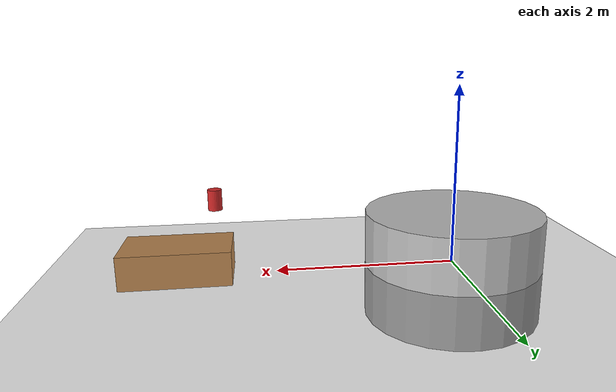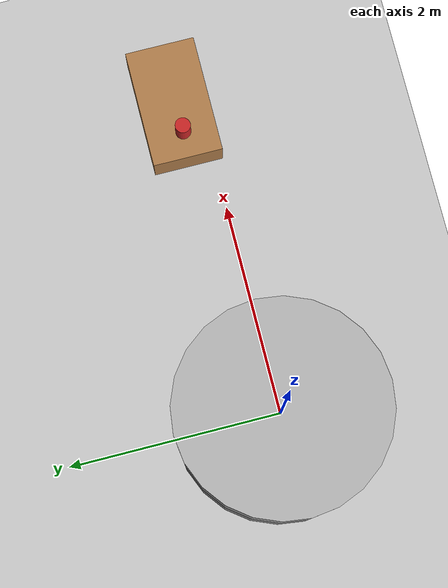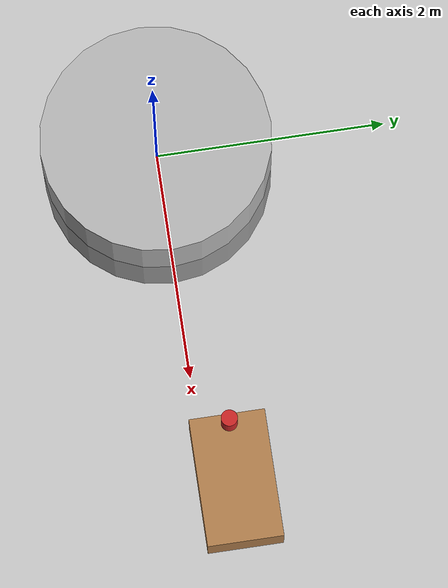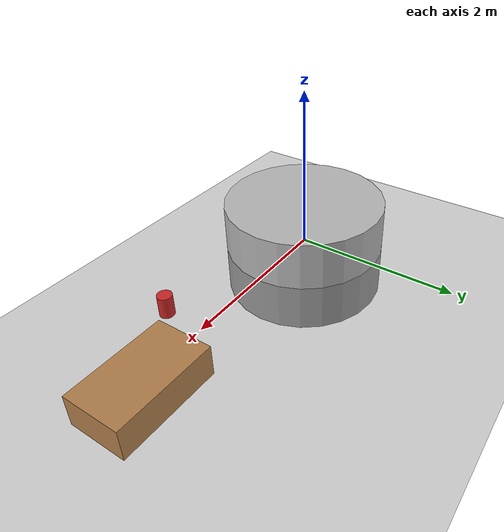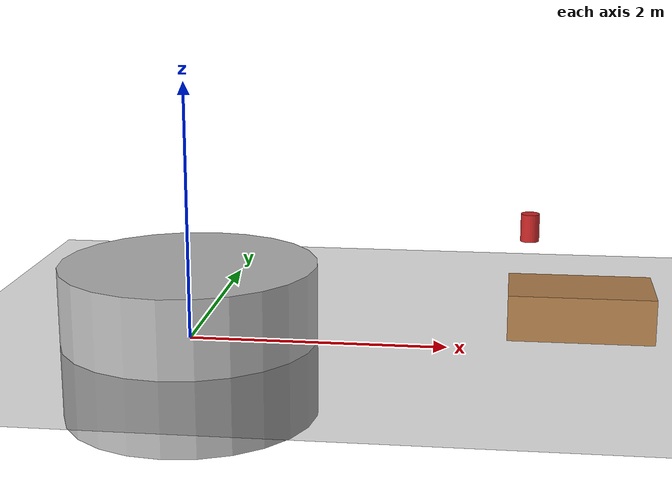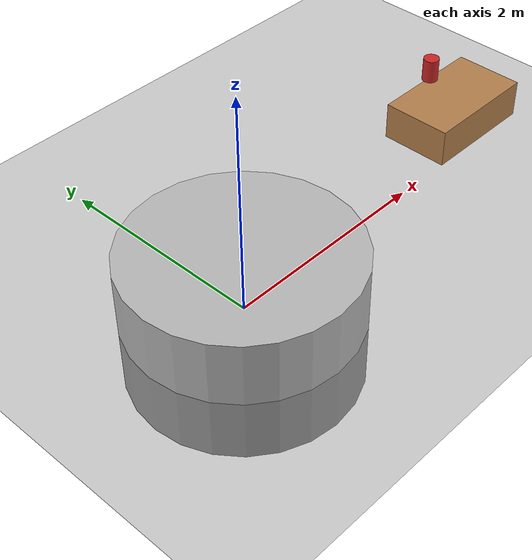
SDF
<?xml version="1.0" ?>
<sdf version="1.4">
  <world name="default">

    <scene>
      <ambient>0.5 0.5 0.5 1</ambient>
      <background>0.5 0.5 0.5 1</background>
      <shadows>false</shadows>
    </scene>
    <physics type="ode">
      <!-- update_rate="1000"-->
      <gravity>0 0 -9.8</gravity>
      <ode>
        <solver>
          <type>quick</type>
          <iters>10</iters>
          <sor>1.3</sor>
        </solver>
        <constraints>
          <cfm>0.0</cfm>
          <erp>0.2</erp>
          <contact_max_correcting_vel>100.0</contact_max_correcting_vel>
          <contact_surface_layer>0.001</contact_surface_layer>
        </constraints>
      </ode>
      <max_step_size>0.001</max_step_size>
    </physics>

<model name="surface">
    <link name="link">
      <visual name="visual">
        <geometry>
          <cylinder>
            <radius>1</radius>
            <length>1.2</length>
          </cylinder>
        </geometry>
      </visual>
    </link>
  </model>

    <!-- Ground Plane -->
    <model name="plane1_model">
      <link name="body">
        <collision name="geom_1">
          <geometry>
            <plane>
              <normal>0 0 1</normal>
            </plane>
          </geometry>
          <surface>
            <friction>
              <ode>
                <mu>10.0</mu>
                <mu2>10.0</mu2>
                <fdir1>0 0 0</fdir1>
                <slip1>0</slip1>
                <slip2>0</slip2>
              </ode>
            </friction>
            <bounce>
              <restitution_coefficient>0</restitution_coefficient>
              <threshold>1000000.0</threshold>
            </bounce>
            <contact>
              <ode>
                <soft_cfm>0</soft_cfm>
                <soft_erp>0.2</soft_erp>
                <kp>1e10</kp>
                <kd>1</kd>
                <max_vel>100.0</max_vel>
                <min_depth>0.0001</min_depth>
              </ode>
            </contact>
          </surface>
        </collision>
        <visual name="visual_1">
          <geometry>
            <plane>
              <normal>0 0 1</normal>
              <size>20 20</size>
            </plane>
          </geometry>
          <material>
            <script>
              <name>Gazebo/Road</name>
              <uri>file://media/materials/scripts/gazebo.material</uri>
            </script>
          </material>
          <cast_shadows>false</cast_shadows>
        </visual>
      </link>
      <static>true</static>
    </model>
    <light type="directional" name="my_light">
      <pose>0 0 30 0 0 0</pose>
      <diffuse>.9 .9 .9 1</diffuse>
      <specular>.1 .1 .1 1</specular>
      <attenuation>
        <range>20</range>
      </attenuation>
      <direction>0 0 -1</direction>
      <cast_shadows>false</cast_shadows>
    </light>

    <!-- Plugin to set friction model to cone -->
    <plugin name="cone_friction" filename="libcone_friction.so" />

    <!-- Additional models -->

    <model name='box_support'>
    <static>false</static>
      <pose frame=''>3.0 0.25 0.27 0 0 0</pose>
      <link name='link'>
        <inertial>
          <mass>1</mass>
          <inertia>
            <ixx>0.166667</ixx>
            <ixy>0</ixy>
            <ixz>0</ixz>
            <iyy>0.166667</iyy>
            <iyz>0</iyz>
            <izz>0.166667</izz>
          </inertia>
        </inertial>
       <collision name='collision'>
          <geometry>
            <box>
              <size>1.1 0.65 0.35</size>
            </box>
          </geometry>
          <max_contacts>10</max_contacts>
          <surface>
            <friction>
              <ode>
                <mu>0.5</mu>
                <mu2>0.5</mu2>
              </ode>
            </friction>
          </surface>

        </collision>
        <visual name='visual'>
          <geometry>
            <box>
              <size>1.1 0.65 0.35</size>
            </box>
          </geometry>
          <material>
            <script>
              <name>Gazebo/Wood</name>
              <uri>file://media/materials/scripts/gazebo.material</uri>
            </script>
          </material>
        </visual>
        <self_collide>0</self_collide>
        <kinematic>0</kinematic>
        <gravity>1</gravity>
      </link>
    </model>

    <model name='object_to_grasp'>
    <static>false</static>
      <pose frame=''>2.6 0.25 0.90 0 0 0</pose>
      <link name='link'>
        <inertial>
          <mass>0.1</mass>
          <inertia>
            <ixx>0.01</ixx>
            <ixy>0</ixy>
            <ixz>0</ixz>
            <iyy>0.01</iyy>
            <iyz>0</iyz>
            <izz>0.01</izz>
          </inertia>
        </inertial>
        <collision name='collision'>
          <geometry>
            <cylinder>
              <radius>0.07</radius>
              <length>0.21</length>
            </cylinder>
          </geometry>
          <max_contacts>10</max_contacts>
          <surface>
            <friction>
              <ode>
                <mu>0.5</mu>
                <mu2>0.5</mu2>
              </ode>
            </friction>
          </surface>

        </collision>
        <visual name='visual'>
          <geometry>
            <cylinder>
              <radius>0.07</radius>
              <length>0.21</length>
            </cylinder>
          </geometry>
          <material>
            <script>
              <name>Gazebo/RedGlow</name>
              <uri>file://media/materials/scripts/gazebo.material</uri>
            </script>
          </material>
        </visual>
        <self_collide>0</self_collide>
        <kinematic>0</kinematic>
        <gravity>1</gravity>
      </link>
    </model>

  </world>
</sdf>
